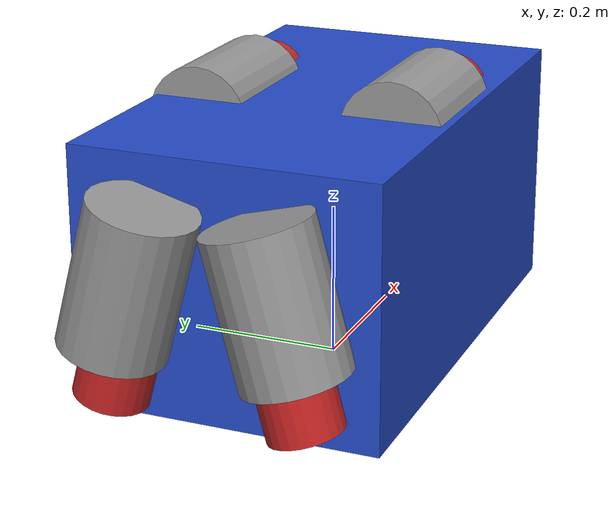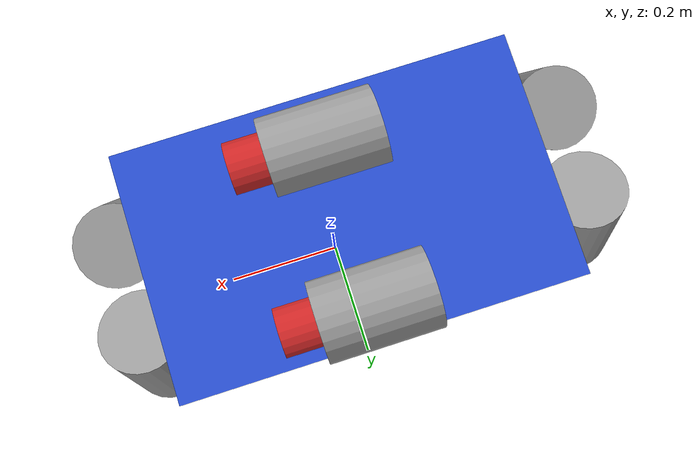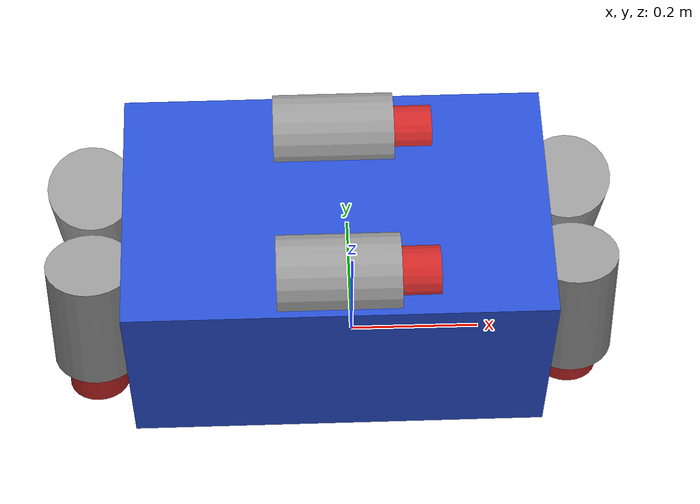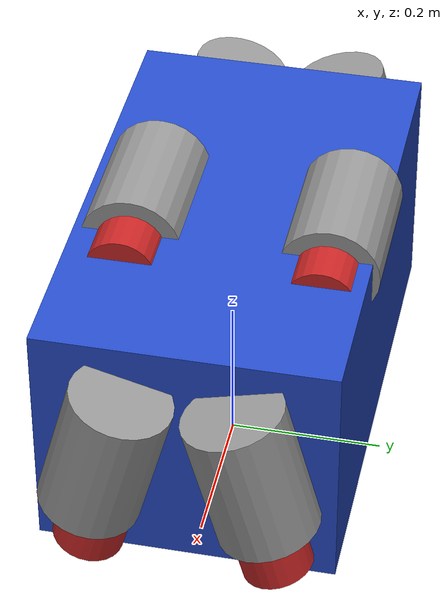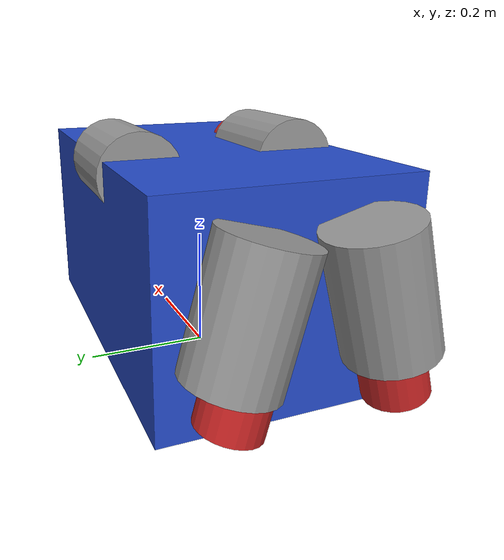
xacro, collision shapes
<?xml version="1.0"?>
<robot xmlns:xacro="http://www.ros.org/wiki/xacro">

    <link name="base_footprint" />

    <link name="base_link">
        <visual>
            <geometry>
                <mesh filename="package://reconbot_description/meshes/ReconBot_Main_Body.dae" />
            </geometry>
            <origin xyz="0 0 0.1" rpy="0 0 0" />
            <material name="blue" />
        </visual>
        <collision>
            <geometry>
                <box size="0.62 0.380 0.32" />
            </geometry>
            <origin xyz="-0.025 0 0.2" rpy="0 0 0" />
        </collision>
        <inertial>
            <mass value="81.46" />
            <origin xyz="-0.025 0 0.2" rpy="0 0 0" />
            <inertia ixx="1.12548060" ixy="-0.00628401" ixz="-0.04074518"
                    iyy="3.07956336" iyz="0.0028181"
                    izz="2.63020163" />
        </inertial>

    </link>

    <xacro:macro name="thruster_link" params="prefix x y z p cx cp ix iz" >
        <link name="${prefix}_thruster_link">
            <visual>
                <geometry>
                    <mesh filename="package://reconbot_description/meshes/ReconBot_Thruster.dae" />
                </geometry>
                <origin xyz="${x} ${y} ${z}" rpy="0 ${p} 0" />
                <material name="grey" />
            </visual>
            <collision>
                <geometry>
                    <cylinder radius="0.065" length="0.178" />
                </geometry>
                <origin xyz="${cx} 0 0" rpy="0 ${cp} 0" />
            </collision>
            <inertial>
                <mass value="1.59521765" />
                <origin xyz="${ix} 0 ${iz}" rpy="0 0 0" />
                <inertia ixx="0.00101028" ixy="-0.00019770" ixz="0.00000211"
                        iyy="0.00434934" iyz="-0.00000027"
                        izz="0.00462580" />
            </inertial>
        </link>
    </xacro:macro>

    <xacro:thruster_link prefix="right_horizontal" x="0.025" y="-0.135" z="-0.235" p="0" cx="0" cp="1.57" ix="0" iz="0" />
    <xacro:thruster_link prefix="left_horizontal" x="0.025" y="-0.135" z="-0.235" p="0" cx="0" cp="1.57" ix="0" iz="0" />
    <xacro:thruster_link prefix="back_right_vertical" x="-0.08" y="-0.135" z="-0.235" p="0.26" cx="-0.05" cp="1.8326" ix="-0.05" iz="0" />
    <xacro:thruster_link prefix="back_left_vertical" x="0.04" y="-0.135" z="-0.235" p="-0.26" cx="-0.05" cp="-1.8326" ix="-0.05" iz="-0.01" />
    <xacro:thruster_link prefix="front_left_vertical" x="-0.08" y="-0.135" z="-0.235" p="0.26" cx="-0.05" cp="1.8326" ix="-0.05" iz="0" />
    <xacro:thruster_link prefix="front_right_vertical" x="0.04" y="-0.135" z="-0.235" p="-0.26" cx="-0.05" cp="-1.8326" ix="-0.05" iz="-0.01" />

    <xacro:macro name="thruster_propeller_link" params="prefix x" >
        <link name="${prefix}_thruster_propeller_link">
            <visual>
                <geometry>
                    <mesh filename="package://reconbot_description/meshes/Propeller.dae" />
                </geometry>
                <origin xyz="${x} 0 0" rpy="0 0 0" />
                <material name="red" />
            </visual>
            <collision>
                <geometry>
                    <cylinder radius="0.045" length="0.06" />
                </geometry>
                <origin xyz="0 0 0.02" rpy="0 0 0" />
            </collision>
            <inertial>
                <mass value="0.12426508" />
                <origin xyz="0 0 0.025" rpy="0 0 0" />
                <inertia ixx="0.00002949" ixy="0" ixz="0"
                        iyy="0.00001860" iyz="0"
                        izz="0.00002949" />
            </inertial>
        </link>
    </xacro:macro>

    <xacro:thruster_propeller_link prefix="right_horizontal" x="-0.002" />
    <xacro:thruster_propeller_link prefix="left_horizontal" x="-0.002" />
    <xacro:thruster_propeller_link prefix="back_right_vertical" x="0" />
    <xacro:thruster_propeller_link prefix="back_left_vertical" x="0" />
    <xacro:thruster_propeller_link prefix="front_left_vertical" x="0" />
    <xacro:thruster_propeller_link prefix="front_right_vertical" x="0" />

    <joint name="base_joint" type="fixed" >
        <parent link="base_footprint" />
        <child link="base_link" />
        <origin xyz="0 0 0" rpy="0 0 0" />
    </joint>

    <xacro:macro name="thruster_joint" params="prefix x y z r p yw" >
        <joint name="base_${prefix}_thruster_joint" type="fixed" >
            <parent link="base_link" />
            <child link="${prefix}_thruster_link" />
            <origin xyz="${x} ${y} ${z}" rpy="${r} ${p} ${yw}" />
        </joint>
    </xacro:macro>

    <xacro:thruster_joint prefix="right_horizontal" x="-0.025" y="0.135" z="0.335" r="0" p="0" yw="0" />
    <xacro:thruster_joint prefix="left_horizontal" x="-0.025" y="-0.1175" z="0.342" r="3.14" p="0" yw="0" />
    <xacro:thruster_joint prefix="back_right_vertical" x="0.32" y="0.09" z="0.18" r="1.57" p="1.57" yw="0" />
    <xacro:thruster_joint prefix="back_left_vertical" x="0.32" y="-0.09" z="0.18" r="1.57" p="1.57" yw="0" />
    <xacro:thruster_joint prefix="front_left_vertical" x="-0.385" y="-0.09" z="0.18" r="1.57" p="1.57" yw="3.14" />
    <xacro:thruster_joint prefix="front_right_vertical" x="-0.385" y="0.09" z="0.18" r="1.57" p="1.57" yw="3.14" />

    <xacro:macro name="thruster_propeller_joint" params="prefix x y z p" >
        <joint name="${prefix}_thruster_propeller_joint" type="continuous" >
            <parent link="${prefix}_thruster_link" />
            <child link="${prefix}_thruster_propeller_link" />
            <origin xyz="${x} ${y} ${z}" rpy="0 ${p} 0" />
            <axis xyz="0 0 1" />
        </joint>
    </xacro:macro>

    <xacro:thruster_propeller_joint prefix="right_horizontal" x="0.0955" y="0" z="0" p="1.57" />
    <xacro:thruster_propeller_joint prefix="left_horizontal" x="0.0955" y="0" z="0" p="1.57" />
    <xacro:thruster_propeller_joint prefix="back_right_vertical" x="0.0485" y="0.0022" z="-0.022" p="1.8326" />
    <xacro:thruster_propeller_joint prefix="back_left_vertical" x="0.0455" y="0.0022" z="0.0125" p="1.309" />
    <xacro:thruster_propeller_joint prefix="front_left_vertical" x="0.0485" y="0.0022" z="-0.022" p="1.8326" />
    <xacro:thruster_propeller_joint prefix="front_right_vertical" x="0.0455" y="0.0022" z="0.0125" p="1.309" />

     <!-- Transmission for the thruster -->
    <transmission name="right_horizontal_thruster_propeller_trans">
        <type>transmission_interface/SimpleTransmission</type>
        <joint name="right_horizontal_thruster_propeller_joint">
            <hardwareInterface>EffortJointInterface</hardwareInterface>
        </joint>
        <actuator name="right_horizontal_thruster">
            <mechanicalReduction>1</mechanicalReduction>
            <hardwareInterface>EffortJointInterface</hardwareInterface>
        </actuator>
    </transmission>

</robot>
